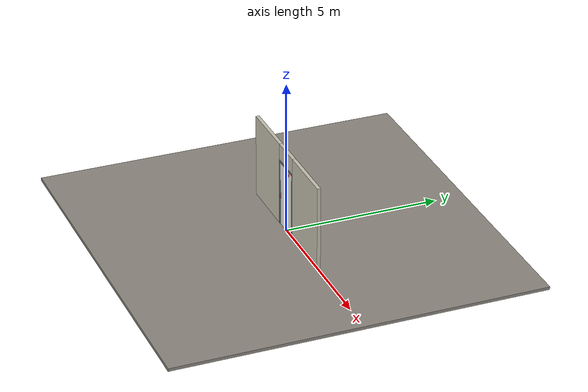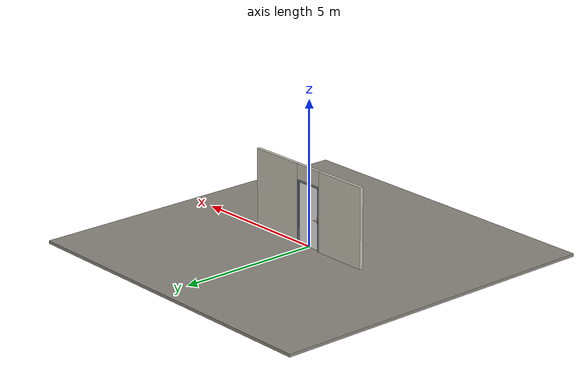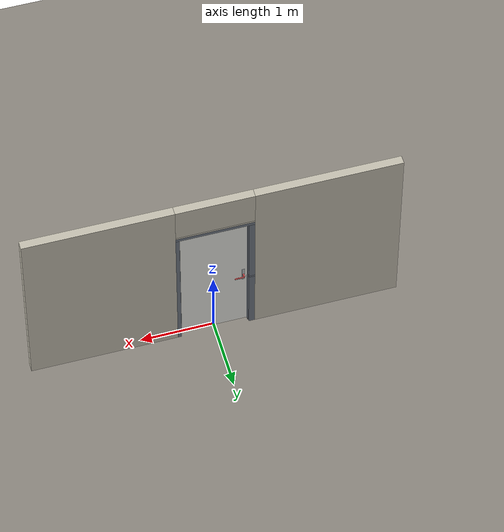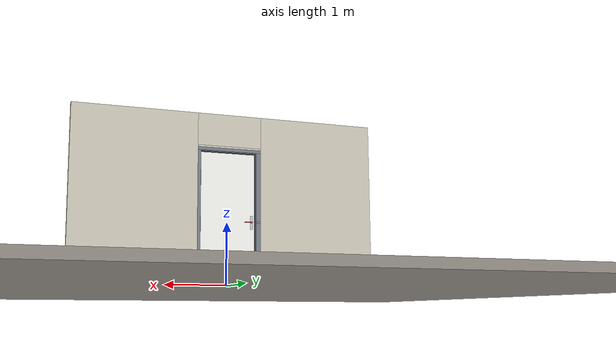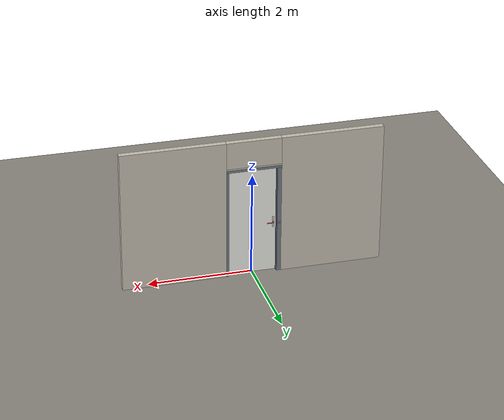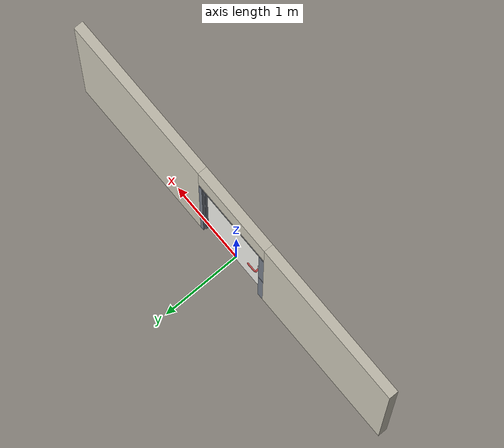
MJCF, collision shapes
<?xml version="1.0" ?>
<mujoco model="db0294_swing_single_simple">
  <compiler angle="radian" meshdir="../../hardware" texturedir="../../textures" autolimits="true" inertiafromgeom="false"/>
  <option timestep="0.002" integrator="implicitfast" cone="elliptic" impratio="10" noslip_iterations="3">
    <flag multiccd="enable"/>
  </option>
  <size memory="16M"/>
  <default>
    <geom condim="4" solref="0.005 1" solimp="0.95 0.99 0.001"/>
    <joint solreflimit="0.005 1" solimplimit="0.95 0.99 0.001"/>
    <tendon solreflimit="0.005 1"/>
    <equality solref="0.002 1"/>
  </default>
  <visual>
    <headlight ambient="0.4 0.4 0.4" diffuse="0.7 0.7 0.7" specular="0.2 0.2 0.2"/>
    <quality shadowsize="4096"/>
    <map znear="0.01" zfar="60"/>
  </visual>
  <asset>
    <mesh name="closer_body_b226fdb10b" file="closer_body_b226fdb10b.obj"/>
    <mesh name="hinge_e22b26c0c1" file="hinge_e22b26c0c1.obj"/>
    <mesh name="hinge_jamb_e1d088f8dc" file="hinge_jamb_e1d088f8dc.obj"/>
    <mesh name="lever_f913fc5b7b" file="lever_f913fc5b7b.obj"/>
    <material name="mat_floor" rgba="0.55 0.53 0.5 1" specular="0.2" shininess="0.15" reflectance="0"/>
    <material name="mat_wall" rgba="0.78 0.76 0.7 1" specular="0.2" shininess="0.1" reflectance="0"/>
    <material name="mat_leaf" rgba="0.93 0.93 0.91 1" specular="0.23" shininess="0.54" reflectance="0.02"/>
    <material name="mat_hinge" rgba="0.65 0.66 0.68 1" specular="0.74" shininess="0.5" reflectance="0.36"/>
    <material name="mat_op_stainless" rgba="0.75 0.76 0.77 1" specular="0.8" shininess="0.65" reflectance="0.4"/>
    <material name="mat_trim" rgba="0.85 0.66 0.3 1" specular="0.8" shininess="0.75" reflectance="0.4"/>
    <material name="mat_keyway" rgba="0.05 0.05 0.05 1" specular="0.2" shininess="0.5" reflectance="0"/>
    <material name="mat_bolt" rgba="0.75 0.76 0.77 1" specular="0.8" shininess="0.65" reflectance="0.4"/>
    <material name="mat_frame" rgba="0.45 0.48 0.52 1" specular="0.32" shininess="0.6" reflectance="0.08"/>
    <material name="mat_seal" rgba="0.1 0.1 0.1 1" specular="0.2" shininess="0.1" reflectance="0"/>
    <material name="mat_closer" rgba="0.22 0.17 0.13 1" specular="0.8" shininess="0.6" reflectance="0.4"/>
    <material name="mat_hook" rgba="0.9 0.9 0.92 1" specular="0.8" shininess="0.9" reflectance="0.4"/>
    <material name="mat_sign" rgba="0.75 0.76 0.77 1" specular="0.8" shininess="0.65" reflectance="0.4"/>
    <texture name="skybox" type="skybox" builtin="gradient" rgb1="0.6 0.7 0.85" rgb2="0.9 0.92 0.95" width="256" height="256"/>
  </asset>
  <worldbody>
    <light name="sun" pos="1.5 -2.5 4" dir="-0.3 0.5 -0.8" directional="true" diffuse="0.8 0.8 0.8" specular="0.3 0.3 0.3" castshadow="true"/>
    <light name="fill" pos="-1.5 2.5 3" dir="0.3 -0.5 -0.7" directional="true" diffuse="0.35 0.35 0.4" castshadow="false"/>
    <camera name="robot_view" pos="0 -2.609312 1.812087" xyaxes="1 0 0 0 0.26963 0.962964" fovy="52"/>
    <camera name="far_view" pos="0 2.666313 1.812087" xyaxes="-1 0 0 0 -0.26963 0.962964" fovy="52"/>
    <camera name="iso" pos="-2.004737 -2.187262 2.234138" xyaxes="0.741536 -0.670913 0 0.242917 0.268487 0.932151" fovy="46"/>
    <camera name="detail_handle" pos="-0.1175 -0.877 1.296" xyaxes="0.97561 0.219512 0 -0.070934 0.315262 0.94635" fovy="38"/>
    <geom name="floor" type="box" size="6 6 0.05" pos="0 0 -0.05" material="mat_floor" group="0" contype="1" conaffinity="1" friction="0.8 0.005 0.0001" density="2400"/>
    <geom name="wall_left" type="box" size="0.97975 0.0575 1.3735" pos="-1.52025 0.0285 1.3735" material="mat_wall" group="0" contype="1" conaffinity="1" friction="0.6 0.005 0.0001" density="800"/>
    <geom name="wall_right" type="box" size="0.99475 0.0575 1.3735" pos="1.50525 0.0285 1.3735" material="mat_wall" group="0" contype="1" conaffinity="1" friction="0.6 0.005 0.0001" density="800"/>
    <geom name="wall_header" type="box" size="0.5255 0.0575 0.26" pos="-0.015 0.0285 2.487" material="mat_wall" group="0" contype="1" conaffinity="1" friction="0.6 0.005 0.0001" density="800"/>
    <geom name="hinge_0_jamb" type="mesh" mesh="hinge_jamb_e1d088f8dc" pos="0.4575 -0.029 0.259" quat="0 0 1 0" material="mat_hinge" group="1" contype="0" conaffinity="0" density="7850"/>
    <geom name="hinge_1_jamb" type="mesh" mesh="hinge_jamb_e1d088f8dc" pos="0.4575 -0.029 1.076" quat="0 0 1 0" material="mat_hinge" group="1" contype="0" conaffinity="0" density="7850"/>
    <geom name="hinge_2_jamb" type="mesh" mesh="hinge_jamb_e1d088f8dc" pos="0.4575 -0.029 1.963" quat="0 0 1 0" material="mat_hinge" group="1" contype="0" conaffinity="0" density="7850"/>
    <geom name="jamb_hinge" type="box" size="0.025 0.0575 1.0735" pos="0.4855 0.0285 1.0735" material="mat_frame" group="0" contype="1" conaffinity="1" friction="0.6 0.005 0.0001" density="300"/>
    <geom name="strike_1016_wall_n" type="box" size="0.04 0.03975 0.015" pos="-0.5005 0.04625 1.016" material="mat_frame" group="0" contype="1" conaffinity="1" friction="0.6 0.005 0.0001" density="300"/>
    <geom name="strike_1016_wall_p" type="box" size="0.04 0.008 0.015" pos="-0.5005 -0.0145 1.016" material="mat_frame" group="0" contype="1" conaffinity="1" friction="0.6 0.005 0.0001" density="300"/>
    <geom name="strike_1016_ramp" type="box" size="0.04 0.016771 0.015" pos="-0.503777 -0.019611 1.016" quat="0.973249 0 0 -0.229753" material="mat_frame" group="0" contype="1" conaffinity="1" friction="0.12 0.005 0.0001" density="300"/>
    <geom name="strike_1016_back" type="box" size="0.031 0.0065 0.015" pos="-0.5095 0 1.016" material="mat_frame" group="0" contype="1" conaffinity="1" friction="0.6 0.005 0.0001" density="300"/>
    <geom name="jamb_strike_0" type="box" size="0.04 0.0575 0.5005" pos="-0.5005 0.0285 0.5005" material="mat_frame" group="0" contype="1" conaffinity="1" friction="0.6 0.005 0.0001" density="300"/>
    <geom name="jamb_strike_1" type="box" size="0.04 0.0575 0.558" pos="-0.5005 0.0285 1.589" material="mat_frame" group="0" contype="1" conaffinity="1" friction="0.6 0.005 0.0001" density="300"/>
    <geom name="jamb_head" type="box" size="0.5255 0.0575 0.025" pos="-0.015 0.0285 2.172" material="mat_frame" group="0" contype="1" conaffinity="1" friction="0.6 0.005 0.0001" density="300"/>
    <geom name="head_stud" type="box" size="0.5255 0.0575 0.015" pos="-0.015 0.0285 2.212" material="mat_wall" group="0" contype="1" conaffinity="1" friction="0.6 0.005 0.0001" density="500"/>
    <geom name="stop_hinge" type="box" size="0.0055 0.016 1.0735" pos="0.455 0.0385 1.0735" material="mat_frame" group="0" contype="1" conaffinity="1" friction="0.6 0.005 0.0001" density="300"/>
    <geom name="stop_strike" type="box" size="0.0055 0.016 1.0735" pos="-0.455 0.0385 1.0735" material="mat_frame" group="0" contype="1" conaffinity="1" friction="0.6 0.005 0.0001" density="300"/>
    <geom name="stop_head" type="box" size="0.4605 0.016 0.0055" pos="0 0.0385 2.1415" material="mat_frame" group="0" contype="1" conaffinity="1" friction="0.6 0.005 0.0001" density="300"/>
    <geom name="seal_hinge" type="box" size="0.004 0.002 1.0735" pos="0.4575 0.024 1.0735" material="mat_seal" group="1" contype="0" conaffinity="0" density="1100"/>
    <geom name="seal_strike" type="box" size="0.004 0.002 1.0735" pos="-0.4575 0.024 1.0735" material="mat_seal" group="1" contype="0" conaffinity="0" density="1100"/>
    <geom name="seal_head" type="box" size="0.4405 0.002 0.008" pos="0 0.024 2.135" material="mat_seal" group="1" contype="0" conaffinity="0" density="1100"/>
    <site name="approach_point" pos="0 -1.5 0" quat="1 0 0 0" size="0.05" rgba="0.2 0.9 0.2 0.5" group="4"/>
    <site name="goal_point" pos="0 1.5 0" quat="1 0 0 0" size="0.05" rgba="0.2 0.9 0.2 0.5" group="4"/>
    <site name="door_plane_center" pos="0 0 1.0735" quat="1 0 0 0" size="0.02" rgba="0.2 0.9 0.2 0.5" group="4"/>
    <body name="leaf" pos="0.4605 0 0">
      <inertial pos="-0.426148 -0.011175 1.247946" mass="41.502629" quat="0.514504 -0.513288 -0.476728 -0.494522" diaginertia="2.63661958 18.827453194 21.414505087"/>
      <joint name="leaf_hinge" type="hinge" axis="0 0 1" pos="-0.003 -0.029 0" limited="true" range="0 1.745329" solreflimit="0.02 1" damping="10.268966" frictionloss="1.687732" stiffness="12.827888" springref="-1.543512" armature="0.02"/>
      <geom name="leaf_slab" type="box" size="0.457 0.022 1.067" pos="-0.46 0 1.076" material="mat_leaf" group="0" contype="1" conaffinity="1" friction="0.4 0.005 0.0001" density="1"/>
      <geom name="hinge_0" type="mesh" mesh="hinge_e22b26c0c1" pos="-0.003 -0.029 0.259" quat="0 0 1 0" material="mat_hinge" group="1" contype="0" conaffinity="0" density="7850"/>
      <geom name="hinge_1" type="mesh" mesh="hinge_e22b26c0c1" pos="-0.003 -0.029 1.076" quat="0 0 1 0" material="mat_hinge" group="1" contype="0" conaffinity="0" density="7850"/>
      <geom name="hinge_2" type="mesh" mesh="hinge_e22b26c0c1" pos="-0.003 -0.029 1.963" quat="0 0 1 0" material="mat_hinge" group="1" contype="0" conaffinity="0" density="7850"/>
      <geom name="leaf_handle_escutcheon_n" type="box" size="0.02 0.0015 0.11" pos="-0.862 -0.0235 1.016" material="mat_op_stainless" group="1" contype="0" conaffinity="0" density="3000"/>
      <geom name="leaf_handle_escutcheon_p" type="box" size="0.02 0.0015 0.11" pos="-0.862 0.0235 1.016" material="mat_op_stainless" group="1" contype="0" conaffinity="0" density="3000"/>
      <geom name="leaf_latch_bolt_faceplate" type="box" size="0.0006 0.011 0.025" pos="-0.9164 0 1.016" material="mat_bolt" group="1" contype="0" conaffinity="0" density="8500"/>
      <geom name="closer_body" type="mesh" mesh="closer_body_b226fdb10b" pos="-0.3 -0.022 2.054" quat="0 0 -0.707107 0.707107" material="mat_closer" group="1" contype="0" conaffinity="0" density="2000"/>
      <geom name="closer_body_col" type="box" size="0.12 0.04 0.03" pos="-0.3 -0.062 2.054" material="mat_closer" group="3" contype="1" conaffinity="1" rgba="0.8 0.3 0.3 0.25" friction="0.6 0.005 0.0001" density="2000"/>
      <site name="leaf_edge_mid" pos="-0.917 0 1.067" quat="1 0 0 0" size="0.02" rgba="0.2 0.9 0.2 0.5" group="4"/>
      <body name="leaf_handle" pos="-0.862 0 1.016">
        <inertial pos="0.0423 0 0" mass="0.712286" quat="0 0.707107 0.707107 0" diaginertia="0.001444644 0.003449344 0.004855619"/>
        <joint name="leaf_handle_hinge" type="hinge" axis="0 1 0" limited="true" range="0 0.65" damping="0.225575" frictionloss="0.051863" stiffness="1" springref="-0.503022" armature="0.01"/>
        <geom name="leaf_handle_lever_n" type="mesh" mesh="lever_f913fc5b7b" pos="0 -0.022 0" quat="0 0 -0.707107 0.707107" material="mat_op_stainless" group="1" contype="0" conaffinity="0" density="3000"/>
        <geom name="leaf_handle_lever_col_n" type="capsule" size="0.0095 0.0555" pos="0.065 -0.077 0" quat="0.707107 0 0.707107 0" material="mat_op_stainless" group="3" contype="1" conaffinity="1" rgba="0.8 0.3 0.3 0.25" friction="0.7 0.01 0.0001" density="3000"/>
        <geom name="leaf_handle_hub_col_n" type="cylinder" size="0.012 0.022" pos="0 -0.052 0" quat="0.707107 -0.707107 0 0" material="mat_op_stainless" group="3" contype="1" conaffinity="1" rgba="0.8 0.3 0.3 0.25" friction="0.6 0.005 0.0001" density="3000"/>
        <geom name="leaf_handle_lever_p" type="mesh" mesh="lever_f913fc5b7b" pos="0 0.022 0" quat="0 0 0.707107 0.707107" material="mat_op_stainless" group="1" contype="0" conaffinity="0" density="3000"/>
        <geom name="leaf_handle_lever_col_p" type="capsule" size="0.0095 0.0555" pos="0.065 0.077 0" quat="0.707107 0 0.707107 0" material="mat_op_stainless" group="3" contype="1" conaffinity="1" rgba="0.8 0.3 0.3 0.25" friction="0.7 0.01 0.0001" density="3000"/>
        <geom name="leaf_handle_hub_col_p" type="cylinder" size="0.012 0.022" pos="0 0.052 0" quat="0.707107 -0.707107 0 0" material="mat_op_stainless" group="3" contype="1" conaffinity="1" rgba="0.8 0.3 0.3 0.25" friction="0.6 0.005 0.0001" density="3000"/>
        <site name="leaf_handle_grip_n" pos="0.104 -0.077 0" quat="1 0 0 0" size="0.012" rgba="0.2 0.9 0.2 0.5" group="4"/>
        <site name="leaf_handle_grip_p" pos="0.104 0.077 0" quat="1 0 0 0" size="0.012" rgba="0.2 0.9 0.2 0.5" group="4"/>
      </body>
      <body name="leaf_latch_bolt" pos="-0.917 0 1.016">
        <inertial pos="0.008 0 0" mass="0.027149" quat="0 0 -0.707107 0.707107" diaginertia="0.000000328 0.000003943 0.000003943"/>
        <joint name="leaf_latch_bolt_slide" type="slide" axis="1 0 0" limited="true" range="0 0.014" damping="2" frictionloss="0.3" stiffness="400" springref="-0.01" armature="0.1"/>
        <geom name="leaf_latch_bolt_capsule" type="capsule" size="0.005 0.017" pos="0.008 0 0" quat="0.707107 0 -0.707107 0" material="mat_bolt" group="0" contype="1" conaffinity="1" friction="0.2 0.005 0.0001" density="8500"/>
      </body>
    </body>
  </worldbody>
  <tendon>
    <fixed name="leaf_latch_bolt_coupling" limited="true" range="0 10">
      <joint joint="leaf_latch_bolt_slide" coef="1"/>
      <joint joint="leaf_handle_hinge" coef="-0.022951"/>
    </fixed>
  </tendon>
  <sensor>
    <jointpos name="leaf_hinge_pos" joint="leaf_hinge"/>
    <jointvel name="leaf_hinge_vel" joint="leaf_hinge"/>
    <jointpos name="leaf_handle_hinge_pos" joint="leaf_handle_hinge"/>
    <jointvel name="leaf_handle_hinge_vel" joint="leaf_handle_hinge"/>
    <jointpos name="leaf_latch_bolt_slide_pos" joint="leaf_latch_bolt_slide"/>
    <jointvel name="leaf_latch_bolt_slide_vel" joint="leaf_latch_bolt_slide"/>
  </sensor>
</mujoco>
